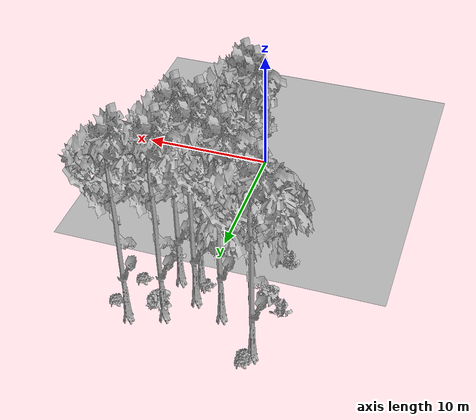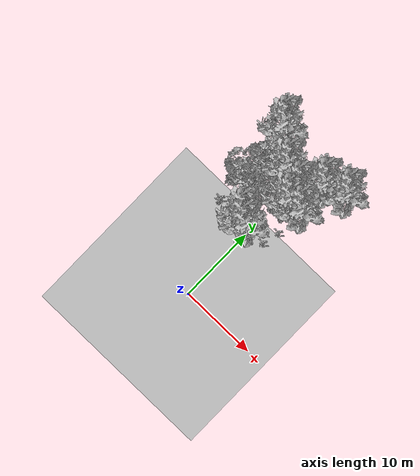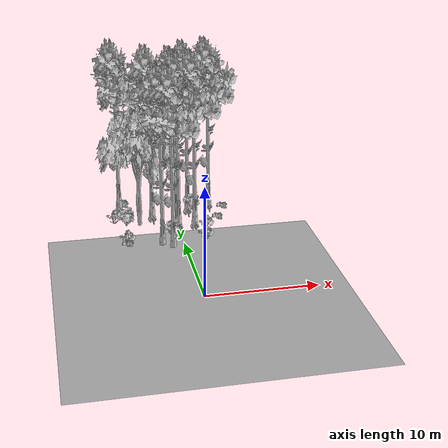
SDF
<sdf version="1.7">
 <world name="default">
  <model name="ground_plane">
   <static>1</static>
   <link name="link">
    <collision name="collision">
     <pose>-50 0 0 0 -0 0</pose>
     <geometry><plane><normal>0 0 1</normal><size>80 80</size></plane></geometry>
     <surface><contact><ode><min_depth>0.01</min_depth><max_vel>0</max_vel></ode></contact></surface>
    </collision>
    <visual name="grass">
     <cast_shadows>0</cast_shadows>
     <geometry>
      <mesh>
       <scale>0.46714285714285714 0.46714285714285714 0.1</scale>
       <uri>file://grass_plane/meshes/grass_plane.dae</uri>
      </mesh>
     </geometry>
    </visual>
   </link>
  </model>
  <model name="Tree 22">
   <static>1</static>
   <pose>-2.0201217243799547 10.20481954132677 0 1.57079 -0 0</pose>
   <link name="link">
    <collision name="collision">
     <geometry><mesh><scale>3.5 5 3.5</scale><uri>model://tree_9/meshes/tree_9.obj</uri></mesh></geometry>
    </collision>
    <visual name="visual">
     <geometry><mesh><scale>3.5 5 3.5</scale><uri>model://tree_9/meshes/tree_9.obj</uri></mesh></geometry>
    </visual>
   </link>
  </model>
  <model name="Tree 169">
   <static>1</static>
   <pose>0.19263385275039013 14.345618205701093 0 1.57079 -0 0</pose>
   <link name="link">
    <collision name="collision">
     <geometry><mesh><scale>3.5 5 3.5</scale><uri>model://tree_9/meshes/tree_9.obj</uri></mesh></geometry>
    </collision>
    <visual name="visual">
     <geometry><mesh><scale>3.5 5 3.5</scale><uri>model://tree_9/meshes/tree_9.obj</uri></mesh></geometry>
    </visual>
   </link>
  </model>
  <model name="Tree 177">
   <static>1</static>
   <pose>-5.148570424742523 19.320614424953142 0 1.57079 -0 0</pose>
   <link name="link">
    <collision name="collision">
     <geometry><mesh><scale>3.5 5 3.5</scale><uri>model://tree_9/meshes/tree_9.obj</uri></mesh></geometry>
    </collision>
    <visual name="visual">
     <geometry><mesh><scale>3.5 5 3.5</scale><uri>model://tree_9/meshes/tree_9.obj</uri></mesh></geometry>
    </visual>
   </link>
  </model>
  <model name="Tree 280">
   <static>1</static>
   <pose>-1.1145954691362974 9.541708320538582 0 1.57079 -0 0</pose>
   <link name="link">
    <collision name="collision">
     <geometry><mesh><scale>3.5 5 3.5</scale><uri>model://tree_9/meshes/tree_9.obj</uri></mesh></geometry>
    </collision>
    <visual name="visual">
     <geometry><mesh><scale>3.5 5 3.5</scale><uri>model://tree_9/meshes/tree_9.obj</uri></mesh></geometry>
    </visual>
   </link>
  </model>
  <model name="Tree 310">
   <static>1</static>
   <pose>-3.6855868739376447 14.749846813291 0 1.57079 -0 0</pose>
   <link name="link">
    <collision name="collision">
     <geometry><mesh><scale>3.5 5 3.5</scale><uri>model://tree_2/meshes/tree_2.obj</uri></mesh></geometry>
    </collision>
    <visual name="visual">
     <geometry><mesh><scale>3.5 5 3.5</scale><uri>model://tree_2/meshes/tree_2.obj</uri></mesh></geometry>
    </visual>
   </link>
  </model>
  <model name="Tree 387">
   <static>1</static>
   <pose>1.6651229449518539 17.752603079701295 0 1.57079 -0 0</pose>
   <link name="link">
    <collision name="collision">
     <geometry><mesh><scale>3.5 5 3.5</scale><uri>model://tree_9/meshes/tree_9.obj</uri></mesh></geometry>
    </collision>
    <visual name="visual">
     <geometry><mesh><scale>3.5 5 3.5</scale><uri>model://tree_9/meshes/tree_9.obj</uri></mesh></geometry>
    </visual>
   </link>
  </model>
  <model name="Tree 445">
   <static>1</static>
   <pose>-2.1084360129688093 16.692785986205713 0 1.57079 -0 0</pose>
   <link name="link">
    <collision name="collision">
     <geometry><mesh><scale>3.5 5 3.5</scale><uri>model://tree_9/meshes/tree_9.obj</uri></mesh></geometry>
    </collision>
    <visual name="visual">
     <geometry><mesh><scale>3.5 5 3.5</scale><uri>model://tree_9/meshes/tree_9.obj</uri></mesh></geometry>
    </visual>
   </link>
  </model>
  <model name="Tree 541">
   <static>1</static>
   <pose>3.9846529481366346 18.542550638818497 0 1.57079 -0 0</pose>
   <link name="link">
    <collision name="collision">
     <geometry><mesh><scale>3.5 5 3.5</scale><uri>model://tree_9/meshes/tree_9.obj</uri></mesh></geometry>
    </collision>
    <visual name="visual">
     <geometry><mesh><scale>3.5 5 3.5</scale><uri>model://tree_9/meshes/tree_9.obj</uri></mesh></geometry>
    </visual>
   </link>
  </model>
  <model name="Tree 555">
   <static>1</static>
   <pose>0.06700422172487208 15.780849502228797 0 1.57079 -0 0</pose>
   <link name="link">
    <collision name="collision">
     <geometry><mesh><scale>3.5 5 3.5</scale><uri>model://tree_9/meshes/tree_9.obj</uri></mesh></geometry>
    </collision>
    <visual name="visual">
     <geometry><mesh><scale>3.5 5 3.5</scale><uri>model://tree_9/meshes/tree_9.obj</uri></mesh></geometry>
    </visual>
   </link>
  </model>
  <model name="Tree 580">
   <static>1</static>
   <pose>1.7921372459466198 14.27121550974988 0 1.57079 -0 0</pose>
   <link name="link">
    <collision name="collision">
     <geometry><mesh><scale>3.5 5 3.5</scale><uri>model://tree_9/meshes/tree_9.obj</uri></mesh></geometry>
    </collision>
    <visual name="visual">
     <geometry><mesh><scale>3.5 5 3.5</scale><uri>model://tree_9/meshes/tree_9.obj</uri></mesh></geometry>
    </visual>
   </link>
  </model>
  <model name="Bush 150">
   <static>1</static>
   <pose>-5.2243849323764024 10.884208686606627 0 1.57079 -0 0</pose>
   <link name="link">
    <collision name="collision">
     <geometry><mesh><scale>2 2 2</scale><uri>model://bush_4/meshes/bush_4.obj</uri></mesh></geometry>
     <surface><contact><collide_without_contact>false</collide_without_contact></contact></surface>
    </collision>
    <visual name="visual">
     <geometry><mesh><scale>2 2 2</scale><uri>model://bush_4/meshes/bush_4.obj</uri></mesh></geometry>
    </visual>
   </link>
  </model>
  <model name="Bush 161">
   <static>1</static>
   <pose>4.224502641382848 15.111949257471068 0 1.57079 -0 0</pose>
   <link name="link">
    <collision name="collision">
     <geometry><mesh><scale>2 2 2</scale><uri>model://bush_2/meshes/bush_2.obj</uri></mesh></geometry>
     <surface><contact><collide_without_contact>false</collide_without_contact></contact></surface>
    </collision>
    <visual name="visual">
     <geometry><mesh><scale>2 2 2</scale><uri>model://bush_2/meshes/bush_2.obj</uri></mesh></geometry>
    </visual>
   </link>
  </model>
  <model name="Bush 184">
   <static>1</static>
   <pose>-0.22322442833852563 14.377154735932692 0 1.57079 -0 0</pose>
   <link name="link">
    <collision name="collision">
     <geometry><mesh><scale>2 2 2</scale><uri>model://bush_2/meshes/bush_2.obj</uri></mesh></geometry>
     <surface><contact><collide_without_contact>false</collide_without_contact></contact></surface>
    </collision>
    <visual name="visual">
     <geometry><mesh><scale>2 2 2</scale><uri>model://bush_2/meshes/bush_2.obj</uri></mesh></geometry>
    </visual>
   </link>
  </model>
  <model name="Bush 220">
   <static>1</static>
   <pose>-4.698508748967178 19.623094339930482 0 1.57079 -0 0</pose>
   <link name="link">
    <collision name="collision">
     <geometry><mesh><scale>2 2 2</scale><uri>model://bush_2/meshes/bush_2.obj</uri></mesh></geometry>
     <surface><contact><collide_without_contact>false</collide_without_contact></contact></surface>
    </collision>
    <visual name="visual">
     <geometry><mesh><scale>2 2 2</scale><uri>model://bush_2/meshes/bush_2.obj</uri></mesh></geometry>
    </visual>
   </link>
  </model>
  <model name="Bush 267">
   <static>1</static>
   <pose>2.6928783787640143 12.702398751684385 0 1.57079 -0 0</pose>
   <link name="link">
    <collision name="collision">
     <geometry><mesh><scale>2 2 2</scale><uri>model://bush_4/meshes/bush_4.obj</uri></mesh></geometry>
     <surface><contact><collide_without_contact>false</collide_without_contact></contact></surface>
    </collision>
    <visual name="visual">
     <geometry><mesh><scale>2 2 2</scale><uri>model://bush_4/meshes/bush_4.obj</uri></mesh></geometry>
    </visual>
   </link>
  </model>
  <model name="Bush 350">
   <static>1</static>
   <pose>-4.7559686362262 20.12989948005881 0 1.57079 -0 0</pose>
   <link name="link">
    <collision name="collision">
     <geometry><mesh><scale>2 2 2</scale><uri>model://bush_2/meshes/bush_2.obj</uri></mesh></geometry>
     <surface><contact><collide_without_contact>false</collide_without_contact></contact></surface>
    </collision>
    <visual name="visual">
     <geometry><mesh><scale>2 2 2</scale><uri>model://bush_2/meshes/bush_2.obj</uri></mesh></geometry>
    </visual>
   </link>
  </model>
  <model name="Bush 384">
   <static>1</static>
   <pose>-0.8162201202739539 11.206580177154628 0 1.57079 -0 0</pose>
   <link name="link">
    <collision name="collision">
     <geometry><mesh><scale>2 2 2</scale><uri>model://bush_1/meshes/bush_1.obj</uri></mesh></geometry>
     <surface><contact><collide_without_contact>false</collide_without_contact></contact></surface>
    </collision>
    <visual name="visual">
     <geometry><mesh><scale>2 2 2</scale><uri>model://bush_1/meshes/bush_1.obj</uri></mesh></geometry>
    </visual>
   </link>
  </model>
  <model name="Bush 406">
   <static>1</static>
   <pose>5.2165462197169035 17.560054390724744 0 1.57079 -0 0</pose>
   <link name="link">
    <collision name="collision">
     <geometry><mesh><scale>2 2 2</scale><uri>model://bush_2/meshes/bush_2.obj</uri></mesh></geometry>
     <surface><contact><collide_without_contact>false</collide_without_contact></contact></surface>
    </collision>
    <visual name="visual">
     <geometry><mesh><scale>2 2 2</scale><uri>model://bush_2/meshes/bush_2.obj</uri></mesh></geometry>
    </visual>
   </link>
  </model>
  <model name="Bush 458">
   <static>1</static>
   <pose>2.058867626287139 17.321656835887076 0 1.57079 -0 0</pose>
   <link name="link">
    <collision name="collision">
     <geometry><mesh><scale>2 2 2</scale><uri>model://bush_1/meshes/bush_1.obj</uri></mesh></geometry>
     <surface><contact><collide_without_contact>false</collide_without_contact></contact></surface>
    </collision>
    <visual name="visual">
     <geometry><mesh><scale>2 2 2</scale><uri>model://bush_1/meshes/bush_1.obj</uri></mesh></geometry>
    </visual>
   </link>
  </model>
  <model name="Bush 462">
   <static>1</static>
   <pose>-5.2433916622358865 10.709865943829797 0 1.57079 -0 0</pose>
   <link name="link">
    <collision name="collision">
     <geometry><mesh><scale>2 2 2</scale><uri>model://bush_2/meshes/bush_2.obj</uri></mesh></geometry>
     <surface><contact><collide_without_contact>false</collide_without_contact></contact></surface>
    </collision>
    <visual name="visual">
     <geometry><mesh><scale>2 2 2</scale><uri>model://bush_2/meshes/bush_2.obj</uri></mesh></geometry>
    </visual>
   </link>
  </model>
  <model name="Bush 469">
   <static>1</static>
   <pose>-4.914459294980013 14.738094412079981 0 1.57079 -0 0</pose>
   <link name="link">
    <collision name="collision">
     <geometry><mesh><scale>2 2 2</scale><uri>model://bush_1/meshes/bush_1.obj</uri></mesh></geometry>
     <surface><contact><collide_without_contact>false</collide_without_contact></contact></surface>
    </collision>
    <visual name="visual">
     <geometry><mesh><scale>2 2 2</scale><uri>model://bush_1/meshes/bush_1.obj</uri></mesh></geometry>
    </visual>
   </link>
  </model>
  <model name="Bush 476">
   <static>1</static>
   <pose>2.1910506673022283 10.523470931094884 0 1.57079 -0 0</pose>
   <link name="link">
    <collision name="collision">
     <geometry><mesh><scale>2 2 2</scale><uri>model://bush_4/meshes/bush_4.obj</uri></mesh></geometry>
     <surface><contact><collide_without_contact>false</collide_without_contact></contact></surface>
    </collision>
    <visual name="visual">
     <geometry><mesh><scale>2 2 2</scale><uri>model://bush_4/meshes/bush_4.obj</uri></mesh></geometry>
    </visual>
   </link>
  </model>
  <model name="Bush 539">
   <static>1</static>
   <pose>-6.010003583842099 15.567439059895364 0 1.57079 -0 0</pose>
   <link name="link">
    <collision name="collision">
     <geometry><mesh><scale>2 2 2</scale><uri>model://bush_4/meshes/bush_4.obj</uri></mesh></geometry>
     <surface><contact><collide_without_contact>false</collide_without_contact></contact></surface>
    </collision>
    <visual name="visual">
     <geometry><mesh><scale>2 2 2</scale><uri>model://bush_4/meshes/bush_4.obj</uri></mesh></geometry>
    </visual>
   </link>
  </model>
 </world>
</sdf>
